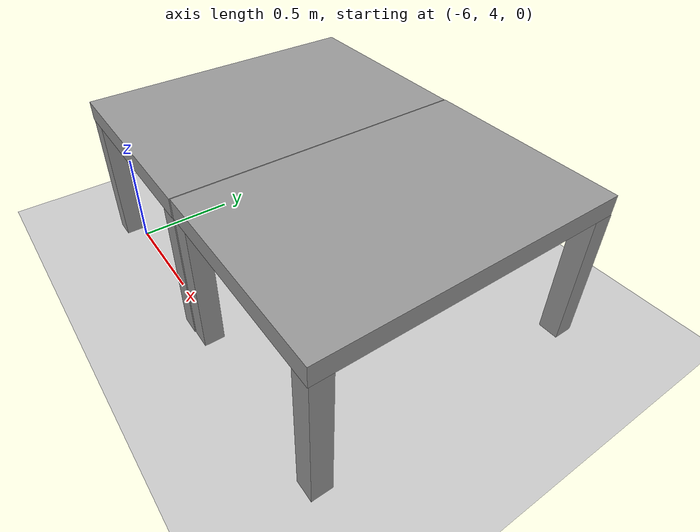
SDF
<sdf version="1.6">
 <world name="default">
  <model name="ground_plane">
   <static>1</static>
   <link name="link">
    <collision name="collision">
     <geometry><plane><normal>0 0 1</normal><size>100 100</size></plane></geometry>
     <surface><friction><ode><mu>100</mu><mu2>50</mu2></ode></friction></surface>
    </collision>
    <visual name="visual">
     <cast_shadows>0</cast_shadows>
     <geometry><plane><normal>0 0 1</normal><size>100 100</size></plane></geometry>
     <material>
      <script><uri>file://media/materials/scripts/gazebo.material</uri><name>Gazebo/Grey</name></script>
     </material>
    </visual>
   </link>
  </model>
  <model name="Table">
   <link name="link_0">
    <pose>-2.4e-05 -0.002672 0.32 0 -0 0</pose>
    <inertial>
     <mass>20</mass>
     <inertia>
      <ixx>0.166667</ixx>
      <ixy>0</ixy>
      <ixz>0</ixz>
      <iyy>0.166667</iyy>
      <iyz>0</iyz>
      <izz>0.166667</izz>
     </inertia>
    </inertial>
    <visual name="visual">
     <geometry><box><size>1 1.5 0.1</size></box></geometry>
     <material>
      <lighting>1</lighting>
      <script><uri>file://media/materials/scripts/gazebo.material</uri><name>Gazebo/Grey</name></script>
      <shader type="pixel"><normal_map>__default__</normal_map></shader>
      <ambient>0.3 0.3 0.3 1</ambient>
      <diffuse>0.7 0.7 0.7 1</diffuse>
      <specular>0.01 0.01 0.01 1</specular>
      <emissive>0 0 0 1</emissive>
     </material>
    </visual>
    <collision name="collision">
     <geometry><box><size>1 1.5 0.1</size></box></geometry>
     <surface>
      <friction>
       <ode><mu>1</mu><mu2>1</mu2><fdir1>0 0 0</fdir1><slip1>0</slip1><slip2>0</slip2></ode>
       <torsional>
        <coefficient>1</coefficient>
        <patch_radius>0</patch_radius>
        <surface_radius>0</surface_radius>
        <use_patch_radius>1</use_patch_radius>
        <ode><slip>0</slip></ode>
       </torsional>
      </friction>
      <bounce><restitution_coefficient>0</restitution_coefficient><threshold>1e+06</threshold></bounce>
      <contact>
       <collide_without_contact>0</collide_without_contact>
       <collide_without_contact_bitmask>1</collide_without_contact_bitmask>
       <collide_bitmask>1</collide_bitmask>
       <ode>
        <soft_cfm>0</soft_cfm>
        <soft_erp>0.2</soft_erp>
        <kp>1e+13</kp>
        <kd>1</kd>
        <max_vel>0.01</max_vel>
        <min_depth>0</min_depth>
       </ode>
       <bullet>
        <split_impulse>1</split_impulse>
        <split_impulse_penetration_threshold>-0.01</split_impulse_penetration_threshold>
        <soft_cfm>0</soft_cfm>
        <soft_erp>0.2</soft_erp>
        <kp>1e+13</kp>
        <kd>1</kd>
       </bullet>
      </contact>
     </surface>
    </collision>
   </link>
   <link name="link_1">
    <pose>-0.449994 0.700668 -0.08 0 -0 0</pose>
    <inertial>
     <mass>2</mass>
     <inertia>
      <ixx>0.166667</ixx>
      <ixy>0</ixy>
      <ixz>0</ixz>
      <iyy>0.166667</iyy>
      <iyz>0</iyz>
      <izz>0.166667</izz>
     </inertia>
    </inertial>
    <visual name="visual">
     <geometry><box><size>0.1 0.1 0.7</size></box></geometry>
     <material>
      <lighting>1</lighting>
      <script><uri>file://media/materials/scripts/gazebo.material</uri><name>Gazebo/Grey</name></script>
      <shader type="pixel"><normal_map>__default__</normal_map></shader>
      <ambient>0.3 0.3 0.3 1</ambient>
      <diffuse>0.7 0.7 0.7 1</diffuse>
      <specular>0.01 0.01 0.01 1</specular>
      <emissive>0 0 0 1</emissive>
     </material>
    </visual>
    <collision name="collision">
     <geometry><box><size>0.1 0.1 0.7</size></box></geometry>
     <surface>
      <friction>
       <ode><mu>1</mu><mu2>1</mu2><fdir1>0 0 0</fdir1><slip1>0</slip1><slip2>0</slip2></ode>
       <torsional>
        <coefficient>1</coefficient>
        <patch_radius>0</patch_radius>
        <surface_radius>0</surface_radius>
        <use_patch_radius>1</use_patch_radius>
        <ode><slip>0</slip></ode>
       </torsional>
      </friction>
      <bounce><restitution_coefficient>0</restitution_coefficient><threshold>1e+06</threshold></bounce>
      <contact>
       <collide_without_contact>0</collide_without_contact>
       <collide_without_contact_bitmask>1</collide_without_contact_bitmask>
       <collide_bitmask>1</collide_bitmask>
       <ode>
        <soft_cfm>0</soft_cfm>
        <soft_erp>0.2</soft_erp>
        <kp>1e+13</kp>
        <kd>1</kd>
        <max_vel>0.01</max_vel>
        <min_depth>0</min_depth>
       </ode>
       <bullet>
        <split_impulse>1</split_impulse>
        <split_impulse_penetration_threshold>-0.01</split_impulse_penetration_threshold>
        <soft_cfm>0</soft_cfm>
        <soft_erp>0.2</soft_erp>
        <kp>1e+13</kp>
        <kd>1</kd>
       </bullet>
      </contact>
     </surface>
    </collision>
   </link>
   <link name="link_1_clone">
    <pose>-0.449994 -0.699332 -0.08 0 -0 0</pose>
    <inertial>
     <mass>2</mass>
     <inertia>
      <ixx>0.166667</ixx>
      <ixy>0</ixy>
      <ixz>0</ixz>
      <iyy>0.166667</iyy>
      <iyz>0</iyz>
      <izz>0.166667</izz>
     </inertia>
    </inertial>
    <visual name="visual">
     <geometry><box><size>0.1 0.1 0.7</size></box></geometry>
     <material>
      <lighting>1</lighting>
      <script><uri>file://media/materials/scripts/gazebo.material</uri><name>Gazebo/Grey</name></script>
      <shader type="pixel"><normal_map>__default__</normal_map></shader>
      <ambient>0.3 0.3 0.3 1</ambient>
      <diffuse>0.7 0.7 0.7 1</diffuse>
      <specular>0.01 0.01 0.01 1</specular>
      <emissive>0 0 0 1</emissive>
     </material>
    </visual>
    <collision name="collision">
     <geometry><box><size>0.1 0.1 0.7</size></box></geometry>
     <surface>
      <friction>
       <ode><mu>1</mu><mu2>1</mu2><fdir1>0 0 0</fdir1><slip1>0</slip1><slip2>0</slip2></ode>
       <torsional>
        <coefficient>1</coefficient>
        <patch_radius>0</patch_radius>
        <surface_radius>0</surface_radius>
        <use_patch_radius>1</use_patch_radius>
        <ode><slip>0</slip></ode>
       </torsional>
      </friction>
      <bounce><restitution_coefficient>0</restitution_coefficient><threshold>1e+06</threshold></bounce>
      <contact>
       <collide_without_contact>0</collide_without_contact>
       <collide_without_contact_bitmask>1</collide_without_contact_bitmask>
       <collide_bitmask>1</collide_bitmask>
       <ode>
        <soft_cfm>0</soft_cfm>
        <soft_erp>0.2</soft_erp>
        <kp>1e+13</kp>
        <kd>1</kd>
        <max_vel>0.01</max_vel>
        <min_depth>0</min_depth>
       </ode>
       <bullet>
        <split_impulse>1</split_impulse>
        <split_impulse_penetration_threshold>-0.01</split_impulse_penetration_threshold>
        <soft_cfm>0</soft_cfm>
        <soft_erp>0.2</soft_erp>
        <kp>1e+13</kp>
        <kd>1</kd>
       </bullet>
      </contact>
     </surface>
    </collision>
   </link>
   <link name="link_1_clone_clone_0">
    <pose>0.450006 0.700668 -0.08 0 -0 0</pose>
    <inertial>
     <mass>2</mass>
     <inertia>
      <ixx>0.166667</ixx>
      <ixy>0</ixy>
      <ixz>0</ixz>
      <iyy>0.166667</iyy>
      <iyz>0</iyz>
      <izz>0.166667</izz>
     </inertia>
    </inertial>
    <visual name="visual">
     <geometry><box><size>0.1 0.1 0.7</size></box></geometry>
     <material>
      <lighting>1</lighting>
      <script><uri>file://media/materials/scripts/gazebo.material</uri><name>Gazebo/Grey</name></script>
      <shader type="pixel"><normal_map>__default__</normal_map></shader>
      <ambient>0.3 0.3 0.3 1</ambient>
      <diffuse>0.7 0.7 0.7 1</diffuse>
      <specular>0.01 0.01 0.01 1</specular>
      <emissive>0 0 0 1</emissive>
     </material>
    </visual>
    <collision name="collision">
     <geometry><box><size>0.1 0.1 0.7</size></box></geometry>
     <surface>
      <friction>
       <ode><mu>1</mu><mu2>1</mu2><fdir1>0 0 0</fdir1><slip1>0</slip1><slip2>0</slip2></ode>
       <torsional>
        <coefficient>1</coefficient>
        <patch_radius>0</patch_radius>
        <surface_radius>0</surface_radius>
        <use_patch_radius>1</use_patch_radius>
        <ode><slip>0</slip></ode>
       </torsional>
      </friction>
      <bounce><restitution_coefficient>0</restitution_coefficient><threshold>1e+06</threshold></bounce>
      <contact>
       <collide_without_contact>0</collide_without_contact>
       <collide_without_contact_bitmask>1</collide_without_contact_bitmask>
       <collide_bitmask>1</collide_bitmask>
       <ode>
        <soft_cfm>0</soft_cfm>
        <soft_erp>0.2</soft_erp>
        <kp>1e+13</kp>
        <kd>1</kd>
        <max_vel>0.01</max_vel>
        <min_depth>0</min_depth>
       </ode>
       <bullet>
        <split_impulse>1</split_impulse>
        <split_impulse_penetration_threshold>-0.01</split_impulse_penetration_threshold>
        <soft_cfm>0</soft_cfm>
        <soft_erp>0.2</soft_erp>
        <kp>1e+13</kp>
        <kd>1</kd>
       </bullet>
      </contact>
     </surface>
    </collision>
   </link>
   <link name="link_1_clone_clone_1">
    <pose>0.450006 -0.699332 -0.08 0 -0 0</pose>
    <inertial>
     <mass>2</mass>
     <inertia>
      <ixx>0.166667</ixx>
      <ixy>0</ixy>
      <ixz>0</ixz>
      <iyy>0.166667</iyy>
      <iyz>0</iyz>
      <izz>0.166667</izz>
     </inertia>
    </inertial>
    <visual name="visual">
     <geometry><box><size>0.1 0.1 0.7</size></box></geometry>
     <material>
      <lighting>1</lighting>
      <script><uri>file://media/materials/scripts/gazebo.material</uri><name>Gazebo/Grey</name></script>
      <shader type="pixel"><normal_map>__default__</normal_map></shader>
      <ambient>0.3 0.3 0.3 1</ambient>
      <diffuse>0.7 0.7 0.7 1</diffuse>
      <specular>0.01 0.01 0.01 1</specular>
      <emissive>0 0 0 1</emissive>
     </material>
    </visual>
    <collision name="collision">
     <geometry><box><size>0.1 0.1 0.7</size></box></geometry>
     <surface>
      <friction>
       <ode><mu>1</mu><mu2>1</mu2><fdir1>0 0 0</fdir1><slip1>0</slip1><slip2>0</slip2></ode>
       <torsional>
        <coefficient>1</coefficient>
        <patch_radius>0</patch_radius>
        <surface_radius>0</surface_radius>
        <use_patch_radius>1</use_patch_radius>
        <ode><slip>0</slip></ode>
       </torsional>
      </friction>
      <bounce><restitution_coefficient>0</restitution_coefficient><threshold>1e+06</threshold></bounce>
      <contact>
       <collide_without_contact>0</collide_without_contact>
       <collide_without_contact_bitmask>1</collide_without_contact_bitmask>
       <collide_bitmask>1</collide_bitmask>
       <ode>
        <soft_cfm>0</soft_cfm>
        <soft_erp>0.2</soft_erp>
        <kp>1e+13</kp>
        <kd>1</kd>
        <max_vel>0.01</max_vel>
        <min_depth>0</min_depth>
       </ode>
       <bullet>
        <split_impulse>1</split_impulse>
        <split_impulse_penetration_threshold>-0.01</split_impulse_penetration_threshold>
        <soft_cfm>0</soft_cfm>
        <soft_erp>0.2</soft_erp>
        <kp>1e+13</kp>
        <kd>1</kd>
       </bullet>
      </contact>
     </surface>
    </collision>
   </link>
   <joint name="link_0_JOINT_0" type="fixed">
    <parent>link_0</parent>
    <child>link_1</child>
    <pose>0 0 0.35 0 -0 0</pose>
    <physics>
     <ode><limit><cfm>0</cfm><erp>0.2</erp></limit><suspension><cfm>0</cfm><erp>0.2</erp></suspension></ode>
    </physics>
   </joint>
   <joint name="link_0_JOINT_1" type="fixed">
    <parent>link_0</parent>
    <child>link_1_clone</child>
    <pose>0 0 0.35 0 -0 0</pose>
    <physics>
     <ode><limit><cfm>0</cfm><erp>0.2</erp></limit><suspension><cfm>0</cfm><erp>0.2</erp></suspension></ode>
    </physics>
   </joint>
   <joint name="link_0_JOINT_2" type="fixed">
    <parent>link_0</parent>
    <child>link_1_clone_clone_1</child>
    <pose>0 0 0.35 0 -0 0</pose>
    <physics>
     <ode><limit><cfm>0</cfm><erp>0.2</erp></limit><suspension><cfm>0</cfm><erp>0.2</erp></suspension></ode>
    </physics>
   </joint>
   <joint name="link_0_JOINT_3" type="fixed">
    <parent>link_0</parent>
    <child>link_1_clone_clone_0</child>
    <pose>0 0 0.35 0 -0 0</pose>
    <physics>
     <ode><limit><cfm>0</cfm><erp>0.2</erp></limit><suspension><cfm>0</cfm><erp>0.2</erp></suspension></ode>
    </physics>
   </joint>
   <static>1</static>
   <pose>-4.66382 4.66707 0.43 0 -0 0</pose>
  </model>
  <model name="Table_clone">
   <link name="link_0">
    <pose>-2.4e-05 -0.002672 0.32 0 -0 0</pose>
    <inertial>
     <mass>20</mass>
     <inertia>
      <ixx>0.166667</ixx>
      <ixy>0</ixy>
      <ixz>0</ixz>
      <iyy>0.166667</iyy>
      <iyz>0</iyz>
      <izz>0.166667</izz>
     </inertia>
    </inertial>
    <visual name="visual">
     <geometry><box><size>1 1.5 0.1</size></box></geometry>
     <material>
      <lighting>1</lighting>
      <script><uri>file://media/materials/scripts/gazebo.material</uri><name>Gazebo/Grey</name></script>
      <shader type="pixel"><normal_map>__default__</normal_map></shader>
      <ambient>0.3 0.3 0.3 1</ambient>
      <diffuse>0.7 0.7 0.7 1</diffuse>
      <specular>0.01 0.01 0.01 1</specular>
      <emissive>0 0 0 1</emissive>
     </material>
    </visual>
    <collision name="collision">
     <geometry><box><size>1 1.5 0.1</size></box></geometry>
     <surface>
      <friction>
       <ode><mu>1</mu><mu2>1</mu2><fdir1>0 0 0</fdir1><slip1>0</slip1><slip2>0</slip2></ode>
       <torsional>
        <coefficient>1</coefficient>
        <patch_radius>0</patch_radius>
        <surface_radius>0</surface_radius>
        <use_patch_radius>1</use_patch_radius>
        <ode><slip>0</slip></ode>
       </torsional>
      </friction>
      <bounce><restitution_coefficient>0</restitution_coefficient><threshold>1e+06</threshold></bounce>
      <contact>
       <collide_without_contact>0</collide_without_contact>
       <collide_without_contact_bitmask>1</collide_without_contact_bitmask>
       <collide_bitmask>1</collide_bitmask>
       <ode>
        <soft_cfm>0</soft_cfm>
        <soft_erp>0.2</soft_erp>
        <kp>1e+13</kp>
        <kd>1</kd>
        <max_vel>0.01</max_vel>
        <min_depth>0</min_depth>
       </ode>
       <bullet>
        <split_impulse>1</split_impulse>
        <split_impulse_penetration_threshold>-0.01</split_impulse_penetration_threshold>
        <soft_cfm>0</soft_cfm>
        <soft_erp>0.2</soft_erp>
        <kp>1e+13</kp>
        <kd>1</kd>
       </bullet>
      </contact>
     </surface>
    </collision>
   </link>
   <link name="link_1">
    <pose>-0.449994 0.700668 -0.08 0 -0 0</pose>
    <inertial>
     <mass>2</mass>
     <inertia>
      <ixx>0.166667</ixx>
      <ixy>0</ixy>
      <ixz>0</ixz>
      <iyy>0.166667</iyy>
      <iyz>0</iyz>
      <izz>0.166667</izz>
     </inertia>
    </inertial>
    <visual name="visual">
     <geometry><box><size>0.1 0.1 0.7</size></box></geometry>
     <material>
      <lighting>1</lighting>
      <script><uri>file://media/materials/scripts/gazebo.material</uri><name>Gazebo/Grey</name></script>
      <shader type="pixel"><normal_map>__default__</normal_map></shader>
      <ambient>0.3 0.3 0.3 1</ambient>
      <diffuse>0.7 0.7 0.7 1</diffuse>
      <specular>0.01 0.01 0.01 1</specular>
      <emissive>0 0 0 1</emissive>
     </material>
    </visual>
    <collision name="collision">
     <geometry><box><size>0.1 0.1 0.7</size></box></geometry>
     <surface>
      <friction>
       <ode><mu>1</mu><mu2>1</mu2><fdir1>0 0 0</fdir1><slip1>0</slip1><slip2>0</slip2></ode>
       <torsional>
        <coefficient>1</coefficient>
        <patch_radius>0</patch_radius>
        <surface_radius>0</surface_radius>
        <use_patch_radius>1</use_patch_radius>
        <ode><slip>0</slip></ode>
       </torsional>
      </friction>
      <bounce><restitution_coefficient>0</restitution_coefficient><threshold>1e+06</threshold></bounce>
      <contact>
       <collide_without_contact>0</collide_without_contact>
       <collide_without_contact_bitmask>1</collide_without_contact_bitmask>
       <collide_bitmask>1</collide_bitmask>
       <ode>
        <soft_cfm>0</soft_cfm>
        <soft_erp>0.2</soft_erp>
        <kp>1e+13</kp>
        <kd>1</kd>
        <max_vel>0.01</max_vel>
        <min_depth>0</min_depth>
       </ode>
       <bullet>
        <split_impulse>1</split_impulse>
        <split_impulse_penetration_threshold>-0.01</split_impulse_penetration_threshold>
        <soft_cfm>0</soft_cfm>
        <soft_erp>0.2</soft_erp>
        <kp>1e+13</kp>
        <kd>1</kd>
       </bullet>
      </contact>
     </surface>
    </collision>
   </link>
   <link name="link_1_clone">
    <pose>-0.449994 -0.699332 -0.08 0 -0 0</pose>
    <inertial>
     <mass>2</mass>
     <inertia>
      <ixx>0.166667</ixx>
      <ixy>0</ixy>
      <ixz>0</ixz>
      <iyy>0.166667</iyy>
      <iyz>0</iyz>
      <izz>0.166667</izz>
     </inertia>
    </inertial>
    <visual name="visual">
     <geometry><box><size>0.1 0.1 0.7</size></box></geometry>
     <material>
      <lighting>1</lighting>
      <script><uri>file://media/materials/scripts/gazebo.material</uri><name>Gazebo/Grey</name></script>
      <shader type="pixel"><normal_map>__default__</normal_map></shader>
      <ambient>0.3 0.3 0.3 1</ambient>
      <diffuse>0.7 0.7 0.7 1</diffuse>
      <specular>0.01 0.01 0.01 1</specular>
      <emissive>0 0 0 1</emissive>
     </material>
    </visual>
    <collision name="collision">
     <geometry><box><size>0.1 0.1 0.7</size></box></geometry>
     <surface>
      <friction>
       <ode><mu>1</mu><mu2>1</mu2><fdir1>0 0 0</fdir1><slip1>0</slip1><slip2>0</slip2></ode>
       <torsional>
        <coefficient>1</coefficient>
        <patch_radius>0</patch_radius>
        <surface_radius>0</surface_radius>
        <use_patch_radius>1</use_patch_radius>
        <ode><slip>0</slip></ode>
       </torsional>
      </friction>
      <bounce><restitution_coefficient>0</restitution_coefficient><threshold>1e+06</threshold></bounce>
      <contact>
       <collide_without_contact>0</collide_without_contact>
       <collide_without_contact_bitmask>1</collide_without_contact_bitmask>
       <collide_bitmask>1</collide_bitmask>
       <ode>
        <soft_cfm>0</soft_cfm>
        <soft_erp>0.2</soft_erp>
        <kp>1e+13</kp>
        <kd>1</kd>
        <max_vel>0.01</max_vel>
        <min_depth>0</min_depth>
       </ode>
       <bullet>
        <split_impulse>1</split_impulse>
        <split_impulse_penetration_threshold>-0.01</split_impulse_penetration_threshold>
        <soft_cfm>0</soft_cfm>
        <soft_erp>0.2</soft_erp>
        <kp>1e+13</kp>
        <kd>1</kd>
       </bullet>
      </contact>
     </surface>
    </collision>
   </link>
   <link name="link_1_clone_clone_0">
    <pose>0.450006 0.700668 -0.08 0 -0 0</pose>
    <inertial>
     <mass>2</mass>
     <inertia>
      <ixx>0.166667</ixx>
      <ixy>0</ixy>
      <ixz>0</ixz>
      <iyy>0.166667</iyy>
      <iyz>0</iyz>
      <izz>0.166667</izz>
     </inertia>
    </inertial>
    <visual name="visual">
     <geometry><box><size>0.1 0.1 0.7</size></box></geometry>
     <material>
      <lighting>1</lighting>
      <script><uri>file://media/materials/scripts/gazebo.material</uri><name>Gazebo/Grey</name></script>
      <shader type="pixel"><normal_map>__default__</normal_map></shader>
      <ambient>0.3 0.3 0.3 1</ambient>
      <diffuse>0.7 0.7 0.7 1</diffuse>
      <specular>0.01 0.01 0.01 1</specular>
      <emissive>0 0 0 1</emissive>
     </material>
    </visual>
    <collision name="collision">
     <geometry><box><size>0.1 0.1 0.7</size></box></geometry>
     <surface>
      <friction>
       <ode><mu>1</mu><mu2>1</mu2><fdir1>0 0 0</fdir1><slip1>0</slip1><slip2>0</slip2></ode>
       <torsional>
        <coefficient>1</coefficient>
        <patch_radius>0</patch_radius>
        <surface_radius>0</surface_radius>
        <use_patch_radius>1</use_patch_radius>
        <ode><slip>0</slip></ode>
       </torsional>
      </friction>
      <bounce><restitution_coefficient>0</restitution_coefficient><threshold>1e+06</threshold></bounce>
      <contact>
       <collide_without_contact>0</collide_without_contact>
       <collide_without_contact_bitmask>1</collide_without_contact_bitmask>
       <collide_bitmask>1</collide_bitmask>
       <ode>
        <soft_cfm>0</soft_cfm>
        <soft_erp>0.2</soft_erp>
        <kp>1e+13</kp>
        <kd>1</kd>
        <max_vel>0.01</max_vel>
        <min_depth>0</min_depth>
       </ode>
       <bullet>
        <split_impulse>1</split_impulse>
        <split_impulse_penetration_threshold>-0.01</split_impulse_penetration_threshold>
        <soft_cfm>0</soft_cfm>
        <soft_erp>0.2</soft_erp>
        <kp>1e+13</kp>
        <kd>1</kd>
       </bullet>
      </contact>
     </surface>
    </collision>
   </link>
   <link name="link_1_clone_clone_1">
    <pose>0.450006 -0.699332 -0.08 0 -0 0</pose>
    <inertial>
     <mass>2</mass>
     <inertia>
      <ixx>0.166667</ixx>
      <ixy>0</ixy>
      <ixz>0</ixz>
      <iyy>0.166667</iyy>
      <iyz>0</iyz>
      <izz>0.166667</izz>
     </inertia>
    </inertial>
    <visual name="visual">
     <geometry><box><size>0.1 0.1 0.7</size></box></geometry>
     <material>
      <lighting>1</lighting>
      <script><uri>file://media/materials/scripts/gazebo.material</uri><name>Gazebo/Grey</name></script>
      <shader type="pixel"><normal_map>__default__</normal_map></shader>
      <ambient>0.3 0.3 0.3 1</ambient>
      <diffuse>0.7 0.7 0.7 1</diffuse>
      <specular>0.01 0.01 0.01 1</specular>
      <emissive>0 0 0 1</emissive>
     </material>
    </visual>
    <collision name="collision">
     <geometry><box><size>0.1 0.1 0.7</size></box></geometry>
     <surface>
      <friction>
       <ode><mu>1</mu><mu2>1</mu2><fdir1>0 0 0</fdir1><slip1>0</slip1><slip2>0</slip2></ode>
       <torsional>
        <coefficient>1</coefficient>
        <patch_radius>0</patch_radius>
        <surface_radius>0</surface_radius>
        <use_patch_radius>1</use_patch_radius>
        <ode><slip>0</slip></ode>
       </torsional>
      </friction>
      <bounce><restitution_coefficient>0</restitution_coefficient><threshold>1e+06</threshold></bounce>
      <contact>
       <collide_without_contact>0</collide_without_contact>
       <collide_without_contact_bitmask>1</collide_without_contact_bitmask>
       <collide_bitmask>1</collide_bitmask>
       <ode>
        <soft_cfm>0</soft_cfm>
        <soft_erp>0.2</soft_erp>
        <kp>1e+13</kp>
        <kd>1</kd>
        <max_vel>0.01</max_vel>
        <min_depth>0</min_depth>
       </ode>
       <bullet>
        <split_impulse>1</split_impulse>
        <split_impulse_penetration_threshold>-0.01</split_impulse_penetration_threshold>
        <soft_cfm>0</soft_cfm>
        <soft_erp>0.2</soft_erp>
        <kp>1e+13</kp>
        <kd>1</kd>
       </bullet>
      </contact>
     </surface>
    </collision>
   </link>
   <joint name="link_0_JOINT_0" type="fixed">
    <parent>link_0</parent>
    <child>link_1</child>
    <pose>0 0 0.35 0 -0 0</pose>
    <physics>
     <ode><limit><cfm>0</cfm><erp>0.2</erp></limit><suspension><cfm>0</cfm><erp>0.2</erp></suspension></ode>
    </physics>
   </joint>
   <joint name="link_0_JOINT_1" type="fixed">
    <parent>link_0</parent>
    <child>link_1_clone</child>
    <pose>0 0 0.35 0 -0 0</pose>
    <physics>
     <ode><limit><cfm>0</cfm><erp>0.2</erp></limit><suspension><cfm>0</cfm><erp>0.2</erp></suspension></ode>
    </physics>
   </joint>
   <joint name="link_0_JOINT_2" type="fixed">
    <parent>link_0</parent>
    <child>link_1_clone_clone_1</child>
    <pose>0 0 0.35 0 -0 0</pose>
    <physics>
     <ode><limit><cfm>0</cfm><erp>0.2</erp></limit><suspension><cfm>0</cfm><erp>0.2</erp></suspension></ode>
    </physics>
   </joint>
   <joint name="link_0_JOINT_3" type="fixed">
    <parent>link_0</parent>
    <child>link_1_clone_clone_0</child>
    <pose>0 0 0.35 0 -0 0</pose>
    <physics>
     <ode><limit><cfm>0</cfm><erp>0.2</erp></limit><suspension><cfm>0</cfm><erp>0.2</erp></suspension></ode>
    </physics>
   </joint>
   <static>1</static>
   <pose>-5.66931 4.66367 0.43 0 -0 0</pose>
  </model>
 </world>
</sdf>
